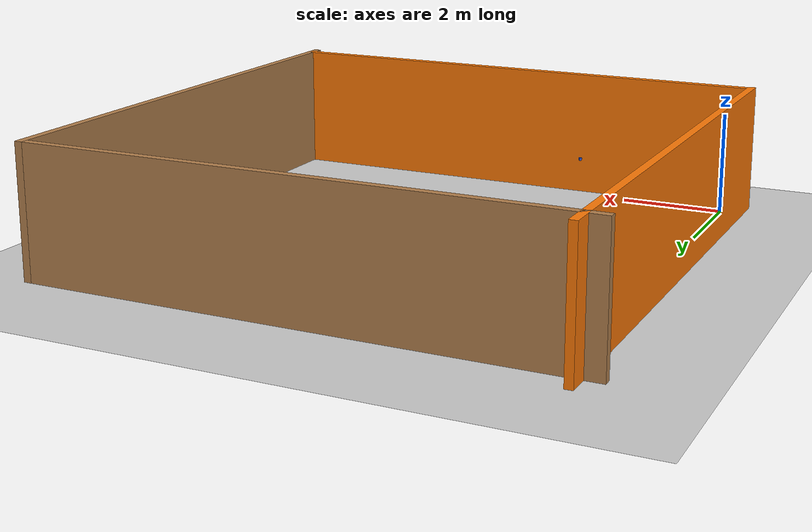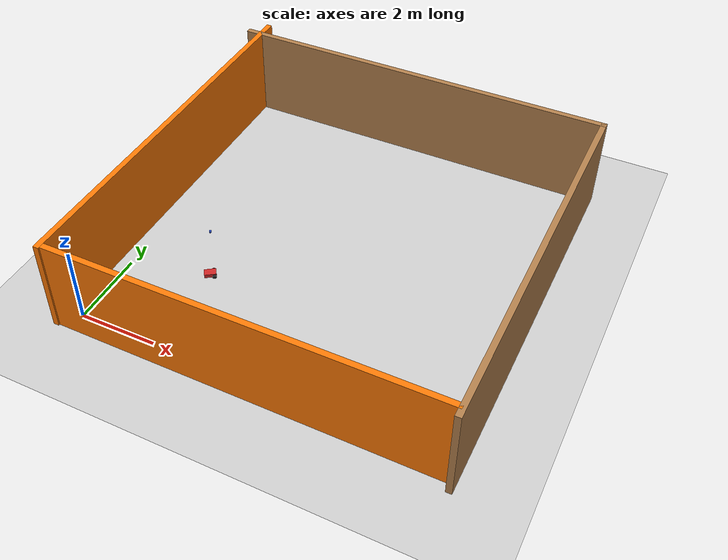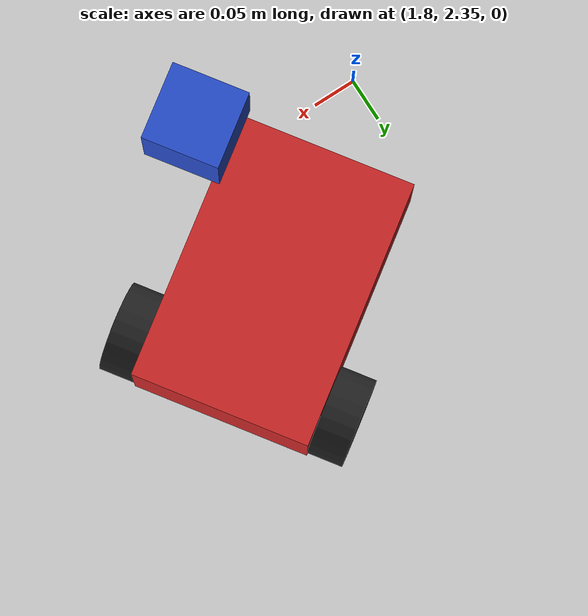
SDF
<sdf version="1.6">
 <world name="default">
  <light name="sun" type="directional">
   <pose>4.5 4.5 5 0 -0 0</pose>
   <diffuse>0.8 0.8 0.8 1</diffuse>
   <specular>0.1 0.1 0.1 1</specular>
   <attenuation>
    <range>1000</range>
    <constant>0.9</constant>
    <linear>0.01</linear>
    <quadratic>0.001</quadratic>
   </attenuation>
   <direction>-0.5 0.5 -1</direction>
  </light>
  <model name="ground_plane">
   <static>1</static>
   <link name="link">
    <collision name="collision">
     <geometry><plane><normal>0 0 1</normal><size>100 100</size></plane></geometry>
     <surface><friction><ode><mu>100</mu><mu2>50</mu2></ode></friction></surface>
    </collision>
    <visual name="visual">
     <cast_shadows>0</cast_shadows>
     <geometry><plane><normal>0 0 1</normal><size>100 100</size></plane></geometry>
     <material>
      <script><uri>file://media/materials/scripts/gazebo.material</uri><name>Gazebo/Grey</name></script>
     </material>
    </visual>
   </link>
  </model>
  <gravity>0 0 -9.8</gravity>
  <magnetic_field>6e-06 2.3e-05 -4.2e-05</magnetic_field>
  <atmosphere type="adiabatic"/>
  <physics name="default_physics" default="0" type="ode">
   <max_step_size>0.001</max_step_size>
   <real_time_factor>1</real_time_factor>
   <real_time_update_rate>1000</real_time_update_rate>
  </physics>
  <scene><ambient>0.4 0.4 0.4 1</ambient><background>0.7 0.7 0.7 1</background><shadows>1</shadows></scene>
  <spherical_coordinates>
   <surface_model>EARTH_WGS84</surface_model>
   <latitude_deg>0</latitude_deg>
   <longitude_deg>0</longitude_deg>
   <elevation>0</elevation>
   <heading_deg>0</heading_deg>
  </spherical_coordinates>
  <model name="my_vehicle2">
   <link name="chassis">
    <pose>0 0 0.02 0 -0 0</pose>
    <inertial>
     <mass>1</mass>
     <inertia>
      <ixx>0.166667</ixx>
      <ixy>0</ixy>
      <ixz>0</ixz>
      <iyy>0.166667</iyy>
      <iyz>0</iyz>
      <izz>0.166667</izz>
     </inertia>
    </inertial>
    <visual name="visual">
     <geometry><box><size>0.3 0.2 0.1</size></box></geometry>
     <material>
      <lighting>1</lighting>
      <script><uri>file://media/materials/scripts/gazebo.material</uri><name>Gazebo/Red</name></script>
     </material>
    </visual>
    <collision name="collision">
     <geometry><box><size>0.3 0.2 0.1</size></box></geometry>
     <surface>
      <friction>
       <ode><mu>1</mu><mu2>1</mu2><fdir1>0 0 0</fdir1><slip1>0</slip1><slip2>0</slip2></ode>
       <torsional>
        <coefficient>1</coefficient>
        <patch_radius>0</patch_radius>
        <surface_radius>0</surface_radius>
        <use_patch_radius>1</use_patch_radius>
        <ode><slip>0</slip></ode>
       </torsional>
      </friction>
      <bounce><restitution_coefficient>0</restitution_coefficient><threshold>1e+06</threshold></bounce>
      <contact>
       <collide_without_contact>0</collide_without_contact>
       <collide_without_contact_bitmask>1</collide_without_contact_bitmask>
       <collide_bitmask>1</collide_bitmask>
       <ode>
        <soft_cfm>0</soft_cfm>
        <soft_erp>0.2</soft_erp>
        <kp>1e+13</kp>
        <kd>1</kd>
        <max_vel>0.01</max_vel>
        <min_depth>0</min_depth>
       </ode>
       <bullet>
        <split_impulse>1</split_impulse>
        <split_impulse_penetration_threshold>-0.01</split_impulse_penetration_threshold>
        <soft_cfm>0</soft_cfm>
        <soft_erp>0.2</soft_erp>
        <kp>1e+13</kp>
        <kd>1</kd>
       </bullet>
      </contact>
     </surface>
    </collision>
   </link>
   <link name="right_wheel">
    <pose>0.1 -0.12 0 1.5707 -0 0</pose>
    <inertial>
     <mass>1</mass>
     <inertia><ixx>0.145833</ixx><ixy>0</ixy><ixz>0</ixz><iyy>0.145833</iyy><iyz>0</iyz><izz>0.125</izz></inertia>
    </inertial>
    <visual name="visual">
     <geometry><cylinder><radius>0.05</radius><length>0.04</length></cylinder></geometry>
     <material>
      <lighting>1</lighting>
      <script><uri>file://media/materials/scripts/gazebo.material</uri><name>Gazebo/Black</name></script>
     </material>
    </visual>
    <collision name="collision">
     <geometry><cylinder><radius>0.05</radius><length>0.04</length></cylinder></geometry>
     <surface>
      <friction>
       <ode><mu>1</mu><mu2>1</mu2><fdir1>0 0 0</fdir1><slip1>0</slip1><slip2>0</slip2></ode>
       <torsional>
        <coefficient>1</coefficient>
        <patch_radius>0</patch_radius>
        <surface_radius>0</surface_radius>
        <use_patch_radius>1</use_patch_radius>
        <ode><slip>0</slip></ode>
       </torsional>
      </friction>
      <bounce><restitution_coefficient>0</restitution_coefficient><threshold>1e+06</threshold></bounce>
      <contact>
       <collide_without_contact>0</collide_without_contact>
       <collide_without_contact_bitmask>1</collide_without_contact_bitmask>
       <collide_bitmask>1</collide_bitmask>
       <ode>
        <soft_cfm>0</soft_cfm>
        <soft_erp>0.2</soft_erp>
        <kp>1e+13</kp>
        <kd>1</kd>
        <max_vel>0.01</max_vel>
        <min_depth>0</min_depth>
       </ode>
       <bullet>
        <split_impulse>1</split_impulse>
        <split_impulse_penetration_threshold>-0.01</split_impulse_penetration_threshold>
        <soft_cfm>0</soft_cfm>
        <soft_erp>0.2</soft_erp>
        <kp>1e+13</kp>
        <kd>1</kd>
       </bullet>
      </contact>
     </surface>
    </collision>
   </link>
   <link name="left_wheel">
    <pose>0.1 0.12 -0 1.5707 -0 0</pose>
    <inertial>
     <mass>1</mass>
     <inertia><ixx>0.145833</ixx><ixy>0</ixy><ixz>0</ixz><iyy>0.145833</iyy><iyz>0</iyz><izz>0.125</izz></inertia>
    </inertial>
    <visual name="visual">
     <geometry><cylinder><radius>0.05</radius><length>0.04</length></cylinder></geometry>
     <material>
      <lighting>1</lighting>
      <script><uri>file://media/materials/scripts/gazebo.material</uri><name>Gazebo/Black</name></script>
     </material>
    </visual>
    <collision name="collision">
     <geometry><cylinder><radius>0.05</radius><length>0.04</length></cylinder></geometry>
     <surface>
      <friction>
       <ode><mu>1</mu><mu2>1</mu2><fdir1>0 0 0</fdir1><slip1>0</slip1><slip2>0</slip2></ode>
       <torsional>
        <coefficient>1</coefficient>
        <patch_radius>0</patch_radius>
        <surface_radius>0</surface_radius>
        <use_patch_radius>1</use_patch_radius>
        <ode><slip>0</slip></ode>
       </torsional>
      </friction>
      <bounce><restitution_coefficient>0</restitution_coefficient><threshold>1e+06</threshold></bounce>
      <contact>
       <collide_without_contact>0</collide_without_contact>
       <collide_without_contact_bitmask>1</collide_without_contact_bitmask>
       <collide_bitmask>1</collide_bitmask>
       <ode>
        <soft_cfm>0</soft_cfm>
        <soft_erp>0.2</soft_erp>
        <kp>1e+13</kp>
        <kd>1</kd>
        <max_vel>0.01</max_vel>
        <min_depth>0</min_depth>
       </ode>
       <bullet>
        <split_impulse>1</split_impulse>
        <split_impulse_penetration_threshold>-0.01</split_impulse_penetration_threshold>
        <soft_cfm>0</soft_cfm>
        <soft_erp>0.2</soft_erp>
        <kp>1e+13</kp>
        <kd>1</kd>
       </bullet>
      </contact>
     </surface>
    </collision>
   </link>
   <link name="camera_link">
    <pose>0.125 0 1.4 0 -0 0</pose>
    <collision name="collision"><geometry><box><size>0.05 0.05 0.05</size></box></geometry></collision>
    <visual name="visual">
     <geometry><box><size>0.05 0.05 0.05</size></box></geometry>
     <material>
      <lighting>1</lighting>
      <script><uri>file://media/materials/scripts/gazebo.material</uri><name>Gazebo/Blue</name></script>
     </material>
    </visual>
    <inertial>
     <mass>1e-05</mass>
     <inertia><ixx>1e-06</ixx><ixy>0</ixy><ixz>0</ixz><iyy>1e-06</iyy><iyz>0</iyz><izz>1e-06</izz></inertia>
    </inertial>
    <sensor name="camera1" type="camera">
     <camera name="head">
      <save enabled="1"><path>/home/peter/thesis_ws/src/add_jeff/src/camera_save_tutorial</path></save>
      <horizontal_fov>1.047</horizontal_fov>
      <image><width>1920</width><height>1080</height><format>R8G8B8</format></image>
      <clip><near>0.1</near><far>20</far></clip>
      <noise><type>gaussian</type><mean>0</mean><stddev>0.007</stddev></noise>
      <lens><scale_to_hfov>1</scale_to_hfov><type>stereographic</type></lens>
     </camera>
     <always_on>1</always_on>
     <update_rate>30</update_rate>
     <visualize>1</visualize>
     <plugin name="camera_controller" filename="libgazebo_ros_camera.so">
      <alwaysOn>true</alwaysOn>
      <updateRate>0.0</updateRate>
      <cameraName>my_vehicle/camera</cameraName>
      <imageTopicName>image_raw</imageTopicName>
      <cameraInfoTopicName>camera_info</cameraInfoTopicName>
      <frameName>camera_link</frameName>
      <hackBaseline>0.07</hackBaseline>
      <distortionK1>0.0</distortionK1>
      <distortionK2>0.0</distortionK2>
      <distortionK3>0.0</distortionK3>
      <distortionT1>0.0</distortionT1>
      <distortionT2>0.0</distortionT2>
     </plugin>
    </sensor>
   </link>
   <link name="caster_ball">
    <pose>-0.14 0 -0.04 0 -0 0</pose>
    <inertial>
     <mass>1</mass>
     <inertia><ixx>0.1</ixx><ixy>0</ixy><ixz>0</ixz><iyy>0.1</iyy><iyz>0</iyz><izz>0.1</izz></inertia>
    </inertial>
    <visual name="visual">
     <geometry><sphere><radius>0.01</radius></sphere></geometry>
     <material>
      <lighting>1</lighting>
      <script><uri>file://media/materials/scripts/gazebo.material</uri><name>Gazebo/Black</name></script>
     </material>
    </visual>
    <collision name="collision">
     <geometry><sphere><radius>0.01</radius></sphere></geometry>
     <surface>
      <friction>
       <ode><mu>1</mu><mu2>1</mu2><fdir1>0 0 0</fdir1><slip1>0</slip1><slip2>0</slip2></ode>
       <torsional>
        <coefficient>1</coefficient>
        <patch_radius>0</patch_radius>
        <surface_radius>0</surface_radius>
        <use_patch_radius>1</use_patch_radius>
        <ode><slip>0</slip></ode>
       </torsional>
      </friction>
      <bounce><restitution_coefficient>0</restitution_coefficient><threshold>1e+06</threshold></bounce>
      <contact>
       <collide_without_contact>0</collide_without_contact>
       <collide_without_contact_bitmask>1</collide_without_contact_bitmask>
       <collide_bitmask>1</collide_bitmask>
       <ode>
        <soft_cfm>0</soft_cfm>
        <soft_erp>0.2</soft_erp>
        <kp>1e+13</kp>
        <kd>1</kd>
        <max_vel>0.01</max_vel>
        <min_depth>0</min_depth>
       </ode>
       <bullet>
        <split_impulse>1</split_impulse>
        <split_impulse_penetration_threshold>-0.01</split_impulse_penetration_threshold>
        <soft_cfm>0</soft_cfm>
        <soft_erp>0.2</soft_erp>
        <kp>1e+13</kp>
        <kd>1</kd>
       </bullet>
      </contact>
     </surface>
    </collision>
   </link>
   <joint name="left_wheel_motor" type="revolute">
    <parent>chassis</parent>
    <child>left_wheel</child>
    <axis>
     <xyz>0 0 1</xyz>
     <use_parent_model_frame>0</use_parent_model_frame>
     <limit>
      <lower>-1.79769e+308</lower>
      <upper>1.79769e+308</upper>
      <effort>-1</effort>
      <velocity>-1</velocity>
     </limit>
     <dynamics>
      <spring_reference>0</spring_reference>
      <spring_stiffness>0</spring_stiffness>
      <damping>0</damping>
      <friction>0</friction>
     </dynamics>
    </axis>
    <physics>
     <ode><limit><cfm>0</cfm><erp>0.2</erp></limit><suspension><cfm>0</cfm><erp>0.2</erp></suspension></ode>
    </physics>
   </joint>
   <joint name="right_wheel_motor" type="revolute">
    <parent>chassis</parent>
    <child>right_wheel</child>
    <axis>
     <xyz>0 0 1</xyz>
     <use_parent_model_frame>0</use_parent_model_frame>
     <limit>
      <lower>-1.79769e+308</lower>
      <upper>1.79769e+308</upper>
      <effort>-1</effort>
      <velocity>-1</velocity>
     </limit>
     <dynamics>
      <spring_reference>0</spring_reference>
      <spring_stiffness>0</spring_stiffness>
      <damping>0</damping>
      <friction>0</friction>
     </dynamics>
    </axis>
    <physics>
     <ode><limit><cfm>0</cfm><erp>0.2</erp></limit><suspension><cfm>0</cfm><erp>0.2</erp></suspension></ode>
    </physics>
   </joint>
   <joint name="caster_ball_joint" type="ball">
    <parent>chassis</parent>
    <child>caster_ball</child>
    <physics>
     <ode><limit><cfm>0</cfm><erp>0.2</erp></limit><suspension><cfm>0</cfm><erp>0.2</erp></suspension></ode>
    </physics>
   </joint>
   <joint name="camera_joint" type="fixed"><parent>chassis</parent><child>camera_link</child></joint>
   <static>0</static>
   <plugin name="differential_drive_controller" filename="libgazebo_ros_diff_drive.so">
    <alwaysOn>true</alwaysOn>
    <updateRate>20</updateRate>
    <leftJoint>left_wheel_motor</leftJoint>
    <rightJoint>right_wheel_motor</rightJoint>
    <wheelSeparation>0.2</wheelSeparation>
    <wheelDiameter>0.1</wheelDiameter>
    <torque>20</torque>
    <commandTopic>cmd_vel</commandTopic>
    <odometryTopic>odom</odometryTopic>
    <odometryFrame>odom</odometryFrame>
    <robotBaseFrame>base_footprint</robotBaseFrame>
   </plugin>
   <pose>2.00393 2.50372 0.050001 2e-06 -7e-06 0.610971</pose>
  </model>
  <model name="Wall">
   <pose>4.58121 4.73435 0 0 -0 0</pose>
   <link name="Wall_2">
    <collision name="Wall_2_Collision">
     <geometry><box><size>10 0.15 2.5</size></box></geometry>
     <pose>0 0 1.25 0 -0 0</pose>
    </collision>
    <visual name="Wall_2_Visual">
     <pose>0 0 1.25 0 -0 0</pose>
     <geometry><box><size>10 0.15 2.5</size></box></geometry>
     <material>
      <script><uri>file://media/materials/scripts/gazebo.material</uri><name>Gazebo/Grey</name></script>
      <ambient>0.996078 0.47451 0.0196078 1</ambient>
     </material>
     <meta><layer>0</layer></meta>
    </visual>
    <pose>0.04367 -5.13866 0 0 -0 0</pose>
   </link>
   <link name="Wall_4">
    <collision name="Wall_4_Collision">
     <geometry><box><size>10.5 0.15 2.5</size></box></geometry>
     <pose>0 0 1.25 0 -0 0</pose>
    </collision>
    <visual name="Wall_4_Visual">
     <pose>0 0 1.25 0 -0 0</pose>
     <geometry><box><size>10.5 0.15 2.5</size></box></geometry>
     <material>
      <script><uri>file://media/materials/scripts/gazebo.material</uri><name>Gazebo/Grey</name></script>
      <ambient>0.996078 0.47451 0.0196078 1</ambient>
     </material>
     <meta><layer>0</layer></meta>
    </visual>
    <pose>-4.96867 0 0 0 0 -1.5708</pose>
   </link>
   <static>1</static>
  </model>
  <model name="wallAround">
   <pose>4.45093 4.43964 0 0 -0 0</pose>
   <link name="Wall_2">
    <collision name="Wall_2_Collision">
     <geometry><box><size>10.5 0.15 2.5</size></box></geometry>
     <pose>0 0 1.25 0 -0 0</pose>
    </collision>
    <visual name="Wall_2_Visual">
     <pose>0 0 1.25 0 -0 0</pose>
     <geometry><box><size>10.5 0.15 2.5</size></box></geometry>
     <material>
      <script><uri>file://media/materials/scripts/gazebo.material</uri><name>Gazebo/Wood</name></script>
      <ambient>1 1 1 1</ambient>
     </material>
     <meta><layer>0</layer></meta>
    </visual>
    <pose>0 5.05 0 0 -0 3.14159</pose>
   </link>
   <link name="Wall_4">
    <collision name="Wall_4_Collision">
     <geometry><box><size>10.25 0.15 2.5</size></box></geometry>
     <pose>0 0 1.25 0 -0 0</pose>
    </collision>
    <visual name="Wall_4_Visual">
     <pose>0 0 1.25 0 -0 0</pose>
     <geometry><box><size>10.25 0.15 2.5</size></box></geometry>
     <material>
      <script><uri>file://media/materials/scripts/gazebo.material</uri><name>Gazebo/Wood</name></script>
      <ambient>1 1 1 1</ambient>
     </material>
     <meta><layer>0</layer></meta>
    </visual>
    <pose>5.175 0 0 0 0 -1.5708</pose>
   </link>
   <static>1</static>
  </model>
 </world>
</sdf>
